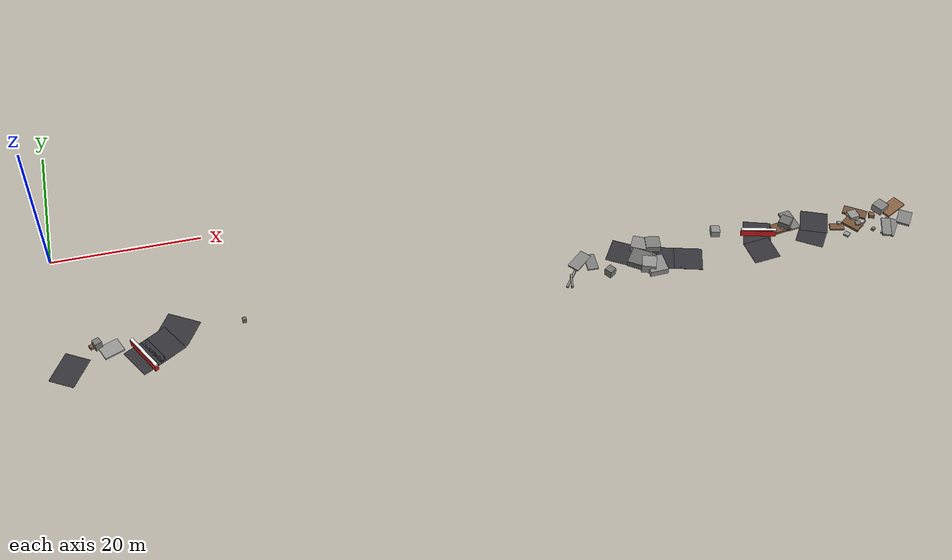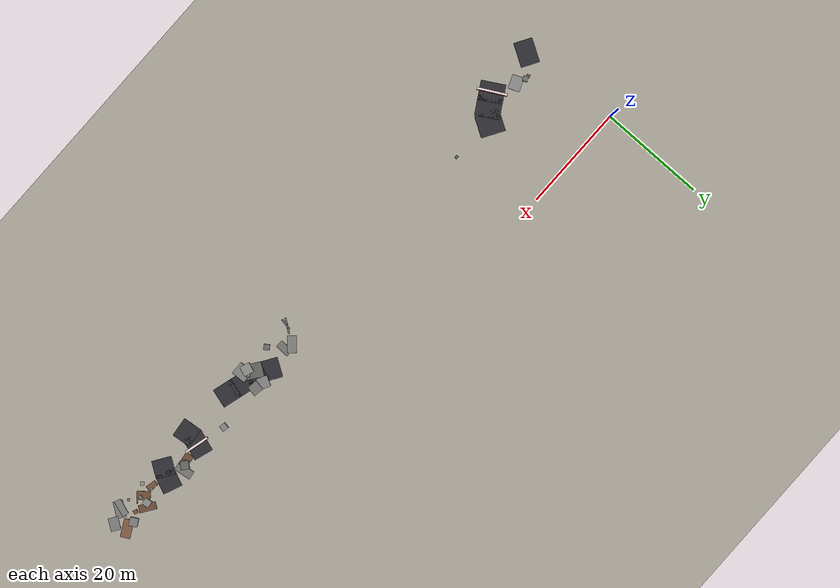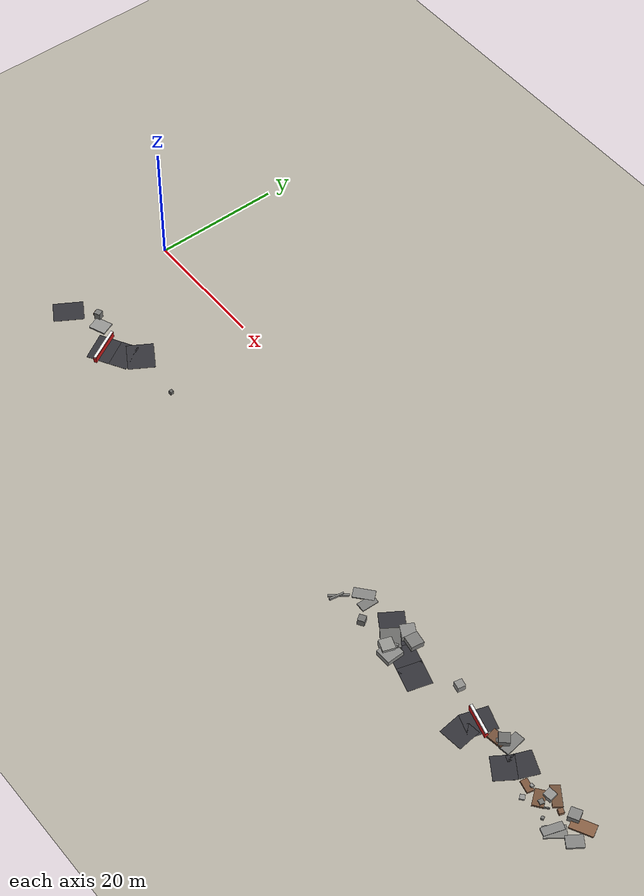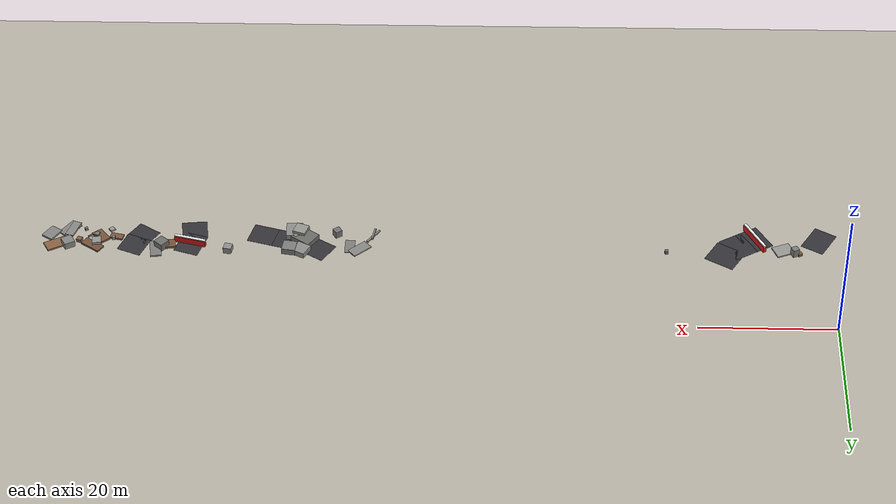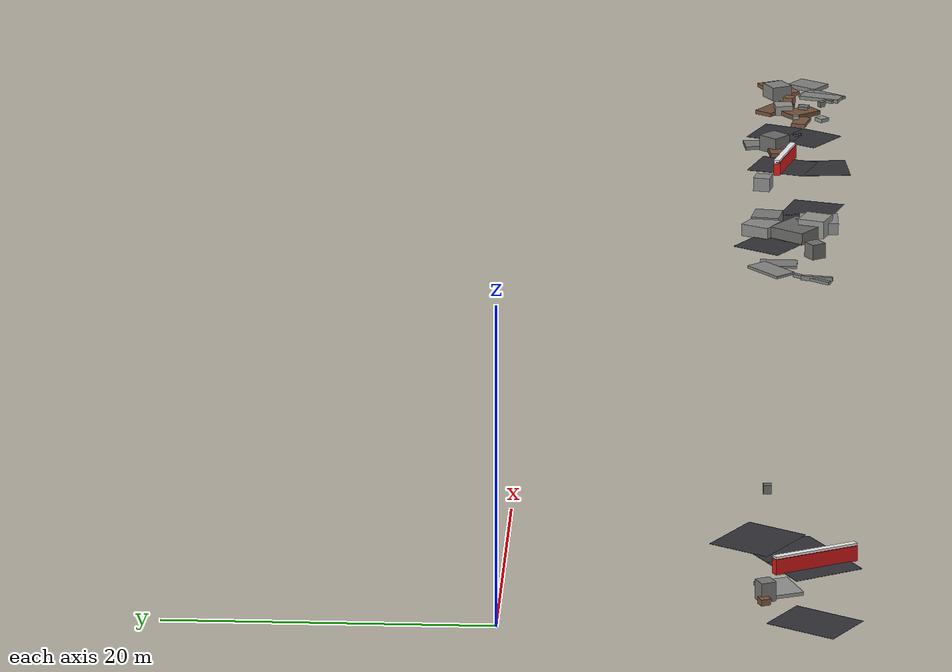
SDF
<sdf version="1.6">
 <world name="navitas_arena">
  <model name="ground_plane">
   <static>true</static>
   <link name="link">
    <collision name="collision">
     <geometry><plane><normal>0 0 1</normal><size>400 400</size></plane></geometry>
     <surface><friction><ode><mu>0.720</mu><mu2>0.720</mu2></ode></friction></surface>
    </collision>
    <visual name="visual">
     <cast_shadows>false</cast_shadows>
     <geometry><plane><normal>0 0 1</normal><size>400 400</size></plane></geometry>
     <material><ambient>0.720 0.700 0.650 1</ambient><diffuse>0.720 0.700 0.650 1</diffuse></material>
    </visual>
   </link>
  </model>
  <model name="road_orta_2_1">
   <static>true</static>
   <pose>1.364 -18.833 0.040 0 0 2.602</pose>
   <link name="link">
    <collision name="col"><geometry><box><size>3.494 4.600 0.020</size></box></geometry></collision>
    <visual name="vis">
     <geometry><box><size>3.494 4.600 0.020</size></box></geometry>
     <material><ambient>0.20 0.20 0.22 1</ambient><diffuse>0.20 0.20 0.22 1</diffuse></material>
    </visual>
   </link>
  </model>
  <model name="road_orta_3_2">
   <static>true</static>
   <pose>10.836 -18.833 0.040 0 0 0.522</pose>
   <link name="link">
    <collision name="col"><geometry><box><size>3.574 4.600 0.020</size></box></geometry></collision>
    <visual name="vis">
     <geometry><box><size>3.574 4.600 0.020</size></box></geometry>
     <material><ambient>0.20 0.20 0.22 1</ambient><diffuse>0.20 0.20 0.22 1</diffuse></material>
    </visual>
   </link>
  </model>
  <model name="road_orta_3_3">
   <static>true</static>
   <pose>13.216 -17.444 0.040 0 0 0.534</pose>
   <link name="link">
    <collision name="col"><geometry><box><size>3.737 4.600 0.020</size></box></geometry></collision>
    <visual name="vis">
     <geometry><box><size>3.737 4.600 0.020</size></box></geometry>
     <material><ambient>0.20 0.20 0.22 1</ambient><diffuse>0.20 0.20 0.22 1</diffuse></material>
    </visual>
   </link>
  </model>
  <model name="road_orta_3_4">
   <static>true</static>
   <pose>15.268 -15.350 0.040 0 0 1.026</pose>
   <link name="link">
    <collision name="col"><geometry><box><size>4.109 4.600 0.020</size></box></geometry></collision>
    <visual name="vis">
     <geometry><box><size>4.109 4.600 0.020</size></box></geometry>
     <material><ambient>0.20 0.20 0.22 1</ambient><diffuse>0.20 0.20 0.22 1</diffuse></material>
    </visual>
   </link>
  </model>
  <model name="bar_orta_3">
   <static>true</static>
   <pose>10.756 -18.837 0.500 0 0 2.066</pose>
   <link name="link">
    <collision name="col"><geometry><box><size>5.600 0.500 1.000</size></box></geometry></collision>
    <visual name="vis">
     <geometry><box><size>5.600 0.500 1.000</size></box></geometry>
     <material><ambient>0.85 0.10 0.10 1</ambient><diffuse>0.85 0.10 0.10 1</diffuse></material>
    </visual>
   </link>
  </model>
  <model name="bar_orta_3b">
   <static>true</static>
   <pose>10.756 -18.837 1.000 0 0 2.066</pose>
   <link name="link">
    <collision name="col"><geometry><box><size>5.600 0.400 0.300</size></box></geometry></collision>
    <visual name="vis">
     <geometry><box><size>5.600 0.400 0.300</size></box></geometry>
     <material><ambient>0.95 0.95 0.95 1</ambient><diffuse>0.95 0.95 0.95 1</diffuse></material>
    </visual>
   </link>
  </model>
  <model name="deb_orta_74">
   <static>true</static>
   <pose>6.740 -16.652 0.108 0 0 0.386</pose>
   <link name="link">
    <collision name="col"><geometry><box><size>2.684 2.181 0.216</size></box></geometry></collision>
    <visual name="vis">
     <geometry><box><size>2.684 2.181 0.216</size></box></geometry>
     <material><ambient>0.59 0.59 0.58 1</ambient><diffuse>0.59 0.59 0.58 1</diffuse></material>
    </visual>
   </link>
  </model>
  <model name="deb_orta_97">
   <static>true</static>
   <pose>23.778 -15.871 0.280 0 0 0.019</pose>
   <link name="link">
    <collision name="col"><geometry><box><size>0.522 0.522 0.561</size></box></geometry></collision>
    <visual name="vis">
     <geometry><box><size>0.522 0.522 0.561</size></box></geometry>
     <material><ambient>0.41 0.41 0.40 1</ambient><diffuse>0.41 0.41 0.40 1</diffuse></material>
    </visual>
   </link>
  </model>
  <model name="deb_orta_111">
   <static>true</static>
   <pose>5.098 -15.870 0.618 0 0 2.017</pose>
   <link name="link">
    <collision name="col"><geometry><box><size>0.949 0.949 1.236</size></box></geometry></collision>
    <visual name="vis">
     <geometry><box><size>0.949 0.949 1.236</size></box></geometry>
     <material><ambient>0.48 0.48 0.47 1</ambient><diffuse>0.48 0.48 0.47 1</diffuse></material>
    </visual>
   </link>
  </model>
  <model name="deb_orta_117">
   <static>true</static>
   <pose>4.371 -15.804 0.199 0 0 1.984</pose>
   <link name="link">
    <collision name="col"><geometry><box><size>0.634 0.634 0.398</size></box></geometry></collision>
    <visual name="vis">
     <geometry><box><size>0.634 0.634 0.398</size></box></geometry>
     <material><ambient>0.50 0.35 0.25 1</ambient><diffuse>0.50 0.35 0.25 1</diffuse></material>
    </visual>
   </link>
  </model>
  <model name="road_zor_1_4">
   <static>true</static>
   <pose>82.796 -18.702 0.040 0 0 2.859</pose>
   <link name="link">
    <collision name="col"><geometry><box><size>3.771 3.680 0.020</size></box></geometry></collision>
    <visual name="vis">
     <geometry><box><size>3.771 3.680 0.020</size></box></geometry>
     <material><ambient>0.20 0.20 0.22 1</ambient><diffuse>0.20 0.20 0.22 1</diffuse></material>
    </visual>
   </link>
  </model>
  <model name="road_zor_1_5">
   <static>true</static>
   <pose>79.946 -17.886 0.040 0 0 2.866</pose>
   <link name="link">
    <collision name="col"><geometry><box><size>3.958 3.680 0.020</size></box></geometry></collision>
    <visual name="vis">
     <geometry><box><size>3.958 3.680 0.020</size></box></geometry>
     <material><ambient>0.20 0.20 0.22 1</ambient><diffuse>0.20 0.20 0.22 1</diffuse></material>
    </visual>
   </link>
  </model>
  <model name="road_zor_1_6">
   <static>true</static>
   <pose>77.145 -17.017 0.040 0 0 2.814</pose>
   <link name="link">
    <collision name="col"><geometry><box><size>3.709 3.680 0.020</size></box></geometry></collision>
    <visual name="vis">
     <geometry><box><size>3.709 3.680 0.020</size></box></geometry>
     <material><ambient>0.20 0.20 0.22 1</ambient><diffuse>0.20 0.20 0.22 1</diffuse></material>
    </visual>
   </link>
  </model>
  <model name="road_zor_1_7">
   <static>true</static>
   <pose>74.595 -15.783 0.040 0 0 2.571</pose>
   <link name="link">
    <collision name="col"><geometry><box><size>3.798 3.680 0.020</size></box></geometry></collision>
    <visual name="vis">
     <geometry><box><size>3.798 3.680 0.020</size></box></geometry>
     <material><ambient>0.20 0.20 0.22 1</ambient><diffuse>0.20 0.20 0.22 1</diffuse></material>
    </visual>
   </link>
  </model>
  <model name="road_zor_2_1">
   <static>true</static>
   <pose>92.912 -19.519 0.040 0 0 1.678</pose>
   <link name="link">
    <collision name="col"><geometry><box><size>3.619 3.680 0.020</size></box></geometry></collision>
    <visual name="vis">
     <geometry><box><size>3.619 3.680 0.020</size></box></geometry>
     <material><ambient>0.20 0.20 0.22 1</ambient><diffuse>0.20 0.20 0.22 1</diffuse></material>
    </visual>
   </link>
  </model>
  <model name="road_zor_2_2">
   <static>true</static>
   <pose>93.289 -16.583 0.040 0 0 1.252</pose>
   <link name="link">
    <collision name="col"><geometry><box><size>4.235 3.680 0.020</size></box></geometry></collision>
    <visual name="vis">
     <geometry><box><size>4.235 3.680 0.020</size></box></geometry>
     <material><ambient>0.20 0.20 0.22 1</ambient><diffuse>0.20 0.20 0.22 1</diffuse></material>
    </visual>
   </link>
  </model>
  <model name="road_zor_3_2">
   <static>true</static>
   <pose>100.410 -18.484 0.040 0 0 0.986</pose>
   <link name="link">
    <collision name="col"><geometry><box><size>3.336 3.680 0.020</size></box></geometry></collision>
    <visual name="vis">
     <geometry><box><size>3.336 3.680 0.020</size></box></geometry>
     <material><ambient>0.20 0.20 0.22 1</ambient><diffuse>0.20 0.20 0.22 1</diffuse></material>
    </visual>
   </link>
  </model>
  <model name="road_zor_3_3">
   <static>true</static>
   <pose>101.600 -16.234 0.040 0 0 1.174</pose>
   <link name="link">
    <collision name="col"><geometry><box><size>3.577 3.680 0.020</size></box></geometry></collision>
    <visual name="vis">
     <geometry><box><size>3.577 3.680 0.020</size></box></geometry>
     <material><ambient>0.20 0.20 0.22 1</ambient><diffuse>0.20 0.20 0.22 1</diffuse></material>
    </visual>
   </link>
  </model>
  <model name="blk_zor_1_0_0">
   <static>true</static>
   <pose>78.774 -15.504 0.483 0 0 1.415</pose>
   <link name="link">
    <collision name="col"><geometry><box><size>1.960 1.960 0.967</size></box></geometry></collision>
    <visual name="vis">
     <geometry><box><size>1.960 1.960 0.967</size></box></geometry>
     <material><ambient>0.49 0.49 0.48 1</ambient><diffuse>0.49 0.49 0.48 1</diffuse></material>
    </visual>
   </link>
  </model>
  <model name="blk_zor_1_0_1">
   <static>true</static>
   <pose>77.067 -15.131 0.425 0 0 2.649</pose>
   <link name="link">
    <collision name="col"><geometry><box><size>2.092 2.092 0.850</size></box></geometry></collision>
    <visual name="vis">
     <geometry><box><size>2.092 2.092 0.850</size></box></geometry>
     <material><ambient>0.55 0.55 0.54 1</ambient><diffuse>0.55 0.55 0.54 1</diffuse></material>
    </visual>
   </link>
  </model>
  <model name="blk_zor_1_0_2">
   <static>true</static>
   <pose>77.236 -18.930 0.635 0 0 2.794</pose>
   <link name="link">
    <collision name="col"><geometry><box><size>1.890 1.890 1.269</size></box></geometry></collision>
    <visual name="vis">
     <geometry><box><size>1.890 1.890 1.269</size></box></geometry>
     <material><ambient>0.59 0.59 0.57 1</ambient><diffuse>0.59 0.59 0.57 1</diffuse></material>
    </visual>
   </link>
  </model>
  <model name="blk_zor_1_0_3">
   <static>true</static>
   <pose>77.941 -17.951 0.425 0 0 0.520</pose>
   <link name="link">
    <collision name="col"><geometry><box><size>0.665 0.665 0.850</size></box></geometry></collision>
    <visual name="vis">
     <geometry><box><size>0.665 0.665 0.850</size></box></geometry>
     <material><ambient>0.54 0.54 0.53 1</ambient><diffuse>0.54 0.54 0.53 1</diffuse></material>
    </visual>
   </link>
  </model>
  <model name="blk_zor_1_0_4">
   <static>true</static>
   <pose>76.594 -17.784 0.425 0 0 2.526</pose>
   <link name="link">
    <collision name="col"><geometry><box><size>3.158 2.726 0.850</size></box></geometry></collision>
    <visual name="vis">
     <geometry><box><size>3.158 2.726 0.850</size></box></geometry>
     <material><ambient>0.42 0.42 0.41 1</ambient><diffuse>0.42 0.42 0.41 1</diffuse></material>
    </visual>
   </link>
  </model>
  <model name="blk_zor_1_0_5">
   <static>true</static>
   <pose>78.183 -19.174 0.425 0 0 1.598</pose>
   <link name="link">
    <collision name="col"><geometry><box><size>2.716 2.442 0.850</size></box></geometry></collision>
    <visual name="vis">
     <geometry><box><size>2.716 2.442 0.850</size></box></geometry>
     <material><ambient>0.55 0.55 0.54 1</ambient><diffuse>0.55 0.55 0.54 1</diffuse></material>
    </visual>
   </link>
  </model>
  <model name="bar_zor_2">
   <static>true</static>
   <pose>93.368 -16.722 0.500 0 0 2.890</pose>
   <link name="link">
    <collision name="col"><geometry><box><size>4.680 0.500 1.000</size></box></geometry></collision>
    <visual name="vis">
     <geometry><box><size>4.680 0.500 1.000</size></box></geometry>
     <material><ambient>0.85 0.10 0.10 1</ambient><diffuse>0.85 0.10 0.10 1</diffuse></material>
    </visual>
   </link>
  </model>
  <model name="bar_zor_2b">
   <static>true</static>
   <pose>93.368 -16.722 1.000 0 0 2.890</pose>
   <link name="link">
    <collision name="col"><geometry><box><size>4.680 0.400 0.300</size></box></geometry></collision>
    <visual name="vis">
     <geometry><box><size>4.680 0.400 0.300</size></box></geometry>
     <material><ambient>0.95 0.95 0.95 1</ambient><diffuse>0.95 0.95 0.95 1</diffuse></material>
    </visual>
   </link>
  </model>
  <model name="deb_zor_6">
   <static>true</static>
   <pose>107.642 -15.954 0.140 0 0 2.536</pose>
   <link name="link">
    <collision name="col"><geometry><box><size>3.183 1.400 0.281</size></box></geometry></collision>
    <visual name="vis">
     <geometry><box><size>3.183 1.400 0.281</size></box></geometry>
     <material><ambient>0.45 0.32 0.23 1</ambient><diffuse>0.45 0.32 0.23 1</diffuse></material>
    </visual>
   </link>
  </model>
  <model name="deb_zor_8">
   <static>true</static>
   <pose>71.898 -18.899 0.541 0 0 2.152</pose>
   <link name="link">
    <collision name="col"><geometry><box><size>1.048 1.048 1.081</size></box></geometry></collision>
    <visual name="vis">
     <geometry><box><size>1.048 1.048 1.081</size></box></geometry>
     <material><ambient>0.45 0.45 0.44 1</ambient><diffuse>0.45 0.45 0.44 1</diffuse></material>
    </visual>
   </link>
  </model>
  <model name="deb_zor_17">
   <static>true</static>
   <pose>105.083 -19.454 0.132 0 0 2.271</pose>
   <link name="link">
    <collision name="col"><geometry><box><size>0.728 0.728 0.265</size></box></geometry></collision>
    <visual name="vis">
     <geometry><box><size>0.728 0.728 0.265</size></box></geometry>
     <material><ambient>0.59 0.59 0.58 1</ambient><diffuse>0.59 0.59 0.58 1</diffuse></material>
    </visual>
   </link>
  </model>
  <model name="deb_zor_28">
   <static>true</static>
   <pose>66.589 -19.036 0.166 0 0 1.388</pose>
   <link name="link">
    <collision name="col"><geometry><box><size>2.183 0.261 0.332</size></box></geometry></collision>
    <visual name="vis">
     <geometry><box><size>2.183 0.261 0.332</size></box></geometry>
     <material><ambient>0.51 0.51 0.50 1</ambient><diffuse>0.51 0.51 0.50 1</diffuse></material>
    </visual>
   </link>
  </model>
  <model name="deb_zor_30">
   <static>true</static>
   <pose>66.612 -18.684 0.107 0 0 0.951</pose>
   <link name="link">
    <collision name="col"><geometry><box><size>2.997 0.297 0.214</size></box></geometry></collision>
    <visual name="vis">
     <geometry><box><size>2.997 0.297 0.214</size></box></geometry>
     <material><ambient>0.51 0.51 0.50 1</ambient><diffuse>0.51 0.51 0.50 1</diffuse></material>
    </visual>
   </link>
  </model>
  <model name="deb_zor_32">
   <static>true</static>
   <pose>69.988 -16.361 0.085 0 0 1.541</pose>
   <link name="link">
    <collision name="col"><geometry><box><size>2.606 1.451 0.170</size></box></geometry></collision>
    <visual name="vis">
     <geometry><box><size>2.606 1.451 0.170</size></box></geometry>
     <material><ambient>0.49 0.49 0.48 1</ambient><diffuse>0.49 0.49 0.48 1</diffuse></material>
    </visual>
   </link>
  </model>
  <model name="deb_zor_36">
   <static>true</static>
   <pose>104.230 -17.892 0.136 0 0 2.912</pose>
   <link name="link">
    <collision name="col"><geometry><box><size>1.916 1.050 0.271</size></box></geometry></collision>
    <visual name="vis">
     <geometry><box><size>1.916 1.050 0.271</size></box></geometry>
     <material><ambient>0.49 0.34 0.24 1</ambient><diffuse>0.49 0.34 0.24 1</diffuse></material>
    </visual>
   </link>
  </model>
  <model name="deb_zor_66">
   <static>true</static>
   <pose>110.800 -19.423 0.137 0 0 1.247</pose>
   <link name="link">
    <collision name="col"><geometry><box><size>3.031 1.227 0.273</size></box></geometry></collision>
    <visual name="vis">
     <geometry><box><size>3.031 1.227 0.273</size></box></geometry>
     <material><ambient>0.53 0.53 0.52 1</ambient><diffuse>0.53 0.53 0.52 1</diffuse></material>
    </visual>
   </link>
  </model>
  <model name="deb_zor_80">
   <static>true</static>
   <pose>97.000 -16.468 0.179 0 0 0.879</pose>
   <link name="link">
    <collision name="col"><geometry><box><size>0.631 0.631 0.359</size></box></geometry></collision>
    <visual name="vis">
     <geometry><box><size>0.631 0.631 0.359</size></box></geometry>
     <material><ambient>0.43 0.43 0.42 1</ambient><diffuse>0.43 0.43 0.42 1</diffuse></material>
    </visual>
   </link>
  </model>
  <model name="deb_zor_82">
   <static>true</static>
   <pose>111.208 -16.080 0.508 0 0 2.076</pose>
   <link name="link">
    <collision name="col"><geometry><box><size>1.582 1.582 1.016</size></box></geometry></collision>
    <visual name="vis">
     <geometry><box><size>1.582 1.582 1.016</size></box></geometry>
     <material><ambient>0.52 0.52 0.51 1</ambient><diffuse>0.52 0.52 0.51 1</diffuse></material>
    </visual>
   </link>
  </model>
  <model name="deb_zor_94">
   <static>true</static>
   <pose>68.554 -15.846 0.091 0 0 0.714</pose>
   <link name="link">
    <collision name="col"><geometry><box><size>3.128 1.610 0.182</size></box></geometry></collision>
    <visual name="vis">
     <geometry><box><size>3.128 1.610 0.182</size></box></geometry>
     <material><ambient>0.53 0.53 0.52 1</ambient><diffuse>0.53 0.53 0.52 1</diffuse></material>
    </visual>
   </link>
  </model>
  <model name="deb_zor_131">
   <static>true</static>
   <pose>113.829 -18.428 0.149 0 0 0.974</pose>
   <link name="link">
    <collision name="col"><geometry><box><size>2.416 1.810 0.298</size></box></geometry></collision>
    <visual name="vis">
     <geometry><box><size>2.416 1.810 0.298</size></box></geometry>
     <material><ambient>0.52 0.52 0.51 1</ambient><diffuse>0.52 0.52 0.51 1</diffuse></material>
    </visual>
   </link>
  </model>
  <model name="deb_zor_134">
   <static>true</static>
   <pose>107.779 -18.316 0.133 0 0 0.706</pose>
   <link name="link">
    <collision name="col"><geometry><box><size>1.747 0.153 0.265</size></box></geometry></collision>
    <visual name="vis">
     <geometry><box><size>1.747 0.153 0.265</size></box></geometry>
     <material><ambient>0.46 0.46 0.45 1</ambient><diffuse>0.46 0.46 0.45 1</diffuse></material>
    </visual>
   </link>
  </model>
  <model name="deb_zor_140">
   <static>true</static>
   <pose>98.365 -15.336 0.128 0 0 1.707</pose>
   <link name="link">
    <collision name="col"><geometry><box><size>3.240 1.600 0.255</size></box></geometry></collision>
    <visual name="vis">
     <geometry><box><size>3.240 1.600 0.255</size></box></geometry>
     <material><ambient>0.49 0.49 0.48 1</ambient><diffuse>0.49 0.49 0.48 1</diffuse></material>
    </visual>
   </link>
  </model>
  <model name="deb_zor_155">
   <static>true</static>
   <pose>107.144 -18.108 0.273 0 0 2.908</pose>
   <link name="link">
    <collision name="col"><geometry><box><size>0.705 0.705 0.546</size></box></geometry></collision>
    <visual name="vis">
     <geometry><box><size>0.705 0.705 0.546</size></box></geometry>
     <material><ambient>0.46 0.46 0.45 1</ambient><diffuse>0.46 0.46 0.45 1</diffuse></material>
    </visual>
   </link>
  </model>
  <model name="deb_zor_162">
   <static>true</static>
   <pose>108.895 -19.424 0.196 0 0 0.533</pose>
   <link name="link">
    <collision name="col"><geometry><box><size>0.424 0.424 0.392</size></box></geometry></collision>
    <visual name="vis">
     <geometry><box><size>0.424 0.424 0.392</size></box></geometry>
     <material><ambient>0.48 0.48 0.47 1</ambient><diffuse>0.48 0.48 0.47 1</diffuse></material>
    </visual>
   </link>
  </model>
  <model name="deb_zor_166">
   <static>true</static>
   <pose>106.535 -17.871 0.168 0 0 2.225</pose>
   <link name="link">
    <collision name="col"><geometry><box><size>2.476 1.582 0.336</size></box></geometry></collision>
    <visual name="vis">
     <geometry><box><size>2.476 1.582 0.336</size></box></geometry>
     <material><ambient>0.47 0.33 0.23 1</ambient><diffuse>0.47 0.33 0.23 1</diffuse></material>
    </visual>
   </link>
  </model>
  <model name="deb_zor_182">
   <static>true</static>
   <pose>96.720 -16.306 0.167 0 0 0.150</pose>
   <link name="link">
    <collision name="col"><geometry><box><size>2.430 1.622 0.333</size></box></geometry></collision>
    <visual name="vis">
     <geometry><box><size>2.430 1.622 0.333</size></box></geometry>
     <material><ambient>0.46 0.32 0.23 1</ambient><diffuse>0.46 0.32 0.23 1</diffuse></material>
    </visual>
   </link>
  </model>
  <model name="deb_zor_183">
   <static>true</static>
   <pose>112.933 -16.169 0.132 0 0 0.489</pose>
   <link name="link">
    <collision name="col"><geometry><box><size>3.372 1.821 0.264</size></box></geometry></collision>
    <visual name="vis">
     <geometry><box><size>3.372 1.821 0.264</size></box></geometry>
     <material><ambient>0.54 0.38 0.27 1</ambient><diffuse>0.54 0.38 0.27 1</diffuse></material>
    </visual>
   </link>
  </model>
  <model name="deb_zor_196">
   <static>true</static>
   <pose>111.251 -19.462 0.094 0 0 0.951</pose>
   <link name="link">
    <collision name="col"><geometry><box><size>3.125 1.775 0.189</size></box></geometry></collision>
    <visual name="vis">
     <geometry><box><size>3.125 1.775 0.189</size></box></geometry>
     <material><ambient>0.51 0.51 0.50 1</ambient><diffuse>0.51 0.51 0.50 1</diffuse></material>
    </visual>
   </link>
  </model>
  <model name="deb_zor_197">
   <static>true</static>
   <pose>109.646 -17.006 0.252 0 0 2.801</pose>
   <link name="link">
    <collision name="col"><geometry><box><size>0.744 0.744 0.504</size></box></geometry></collision>
    <visual name="vis">
     <geometry><box><size>0.744 0.744 0.504</size></box></geometry>
     <material><ambient>0.51 0.36 0.26 1</ambient><diffuse>0.51 0.36 0.26 1</diffuse></material>
    </visual>
   </link>
  </model>
  <model name="deb_zor_207">
   <static>true</static>
   <pose>104.671 -17.492 0.257 0 0 1.572</pose>
   <link name="link">
    <collision name="col"><geometry><box><size>0.458 0.458 0.513</size></box></geometry></collision>
    <visual name="vis">
     <geometry><box><size>0.458 0.458 0.513</size></box></geometry>
     <material><ambient>0.59 0.59 0.58 1</ambient><diffuse>0.59 0.59 0.58 1</diffuse></material>
    </visual>
   </link>
  </model>
  <model name="deb_zor_209">
   <static>true</static>
   <pose>107.077 -16.558 0.345 0 0 0.114</pose>
   <link name="link">
    <collision name="col"><geometry><box><size>1.333 1.333 0.691</size></box></geometry></collision>
    <visual name="vis">
     <geometry><box><size>1.333 1.333 0.691</size></box></geometry>
     <material><ambient>0.58 0.58 0.57 1</ambient><diffuse>0.58 0.58 0.57 1</diffuse></material>
    </visual>
   </link>
  </model>
  <model name="deb_zor_213">
   <static>true</static>
   <pose>87.740 -15.161 0.493 0 0 1.368</pose>
   <link name="link">
    <collision name="col"><geometry><box><size>1.185 1.185 0.985</size></box></geometry></collision>
    <visual name="vis">
     <geometry><box><size>1.185 1.185 0.985</size></box></geometry>
     <material><ambient>0.56 0.56 0.55 1</ambient><diffuse>0.56 0.56 0.55 1</diffuse></material>
    </visual>
   </link>
  </model>
  <model name="chic_zor_0">
   <static>true</static>
   <pose>97.500 -15.948 0.580 0 0 0.852</pose>
   <link name="link">
    <collision name="col"><geometry><box><size>1.560 1.560 1.161</size></box></geometry></collision>
    <visual name="vis">
     <geometry><box><size>1.560 1.560 1.161</size></box></geometry>
     <material><ambient>0.43 0.43 0.42 1</ambient><diffuse>0.43 0.43 0.42 1</diffuse></material>
    </visual>
   </link>
  </model>
 </world>
</sdf>
